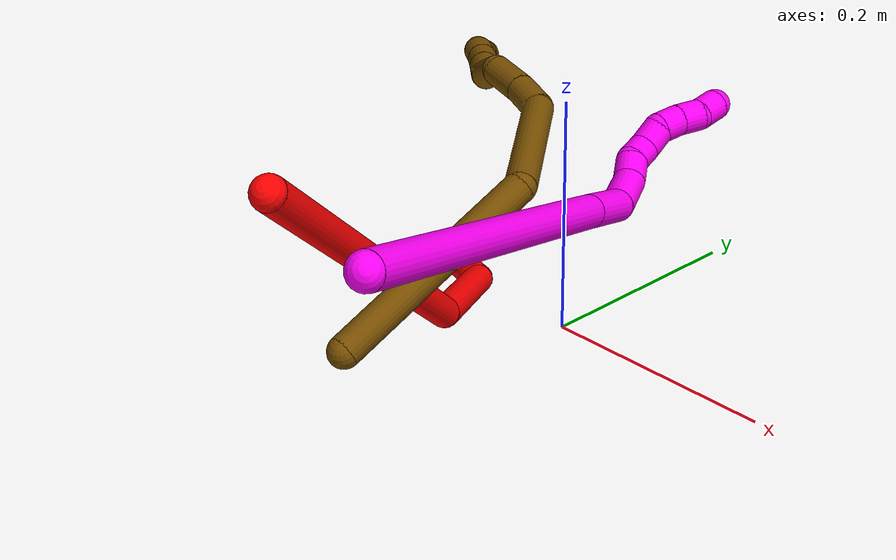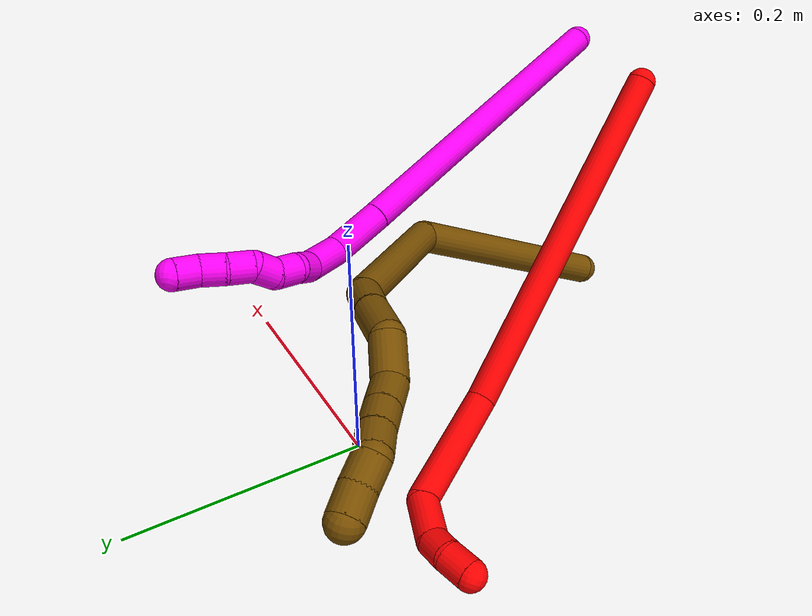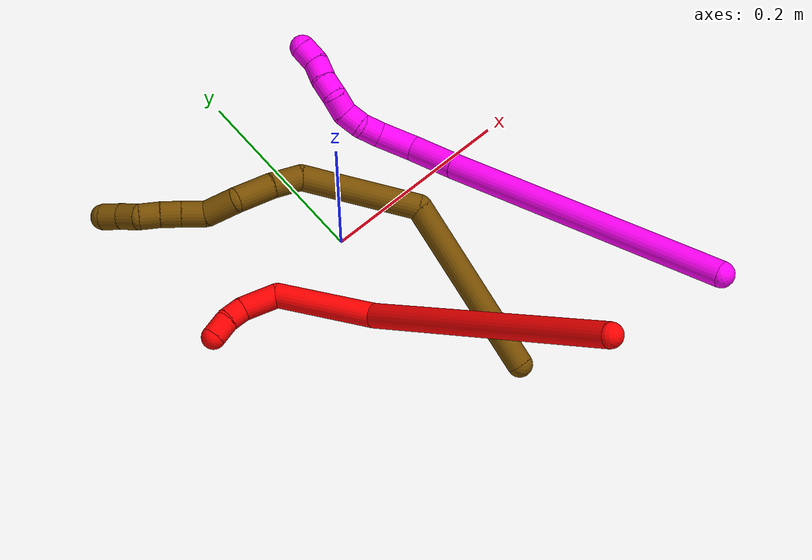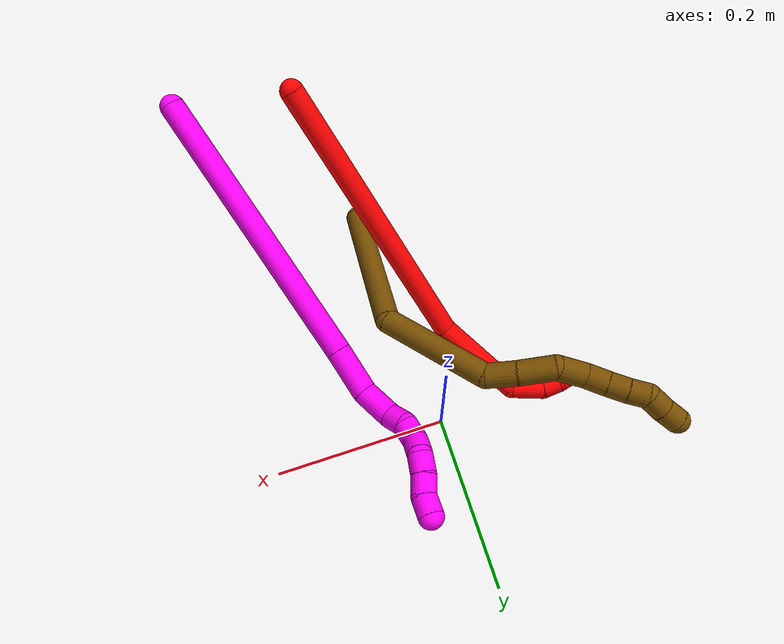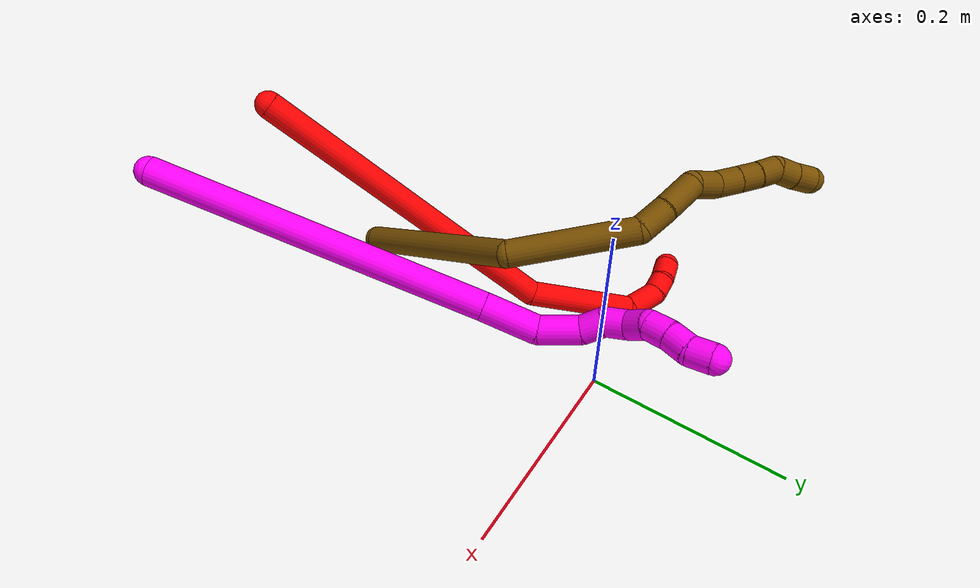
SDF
<sdf version="1.7">
 <world name="default">
  <model name="2">
   <static>0</static>
   <link name="2">
    <collision name="collision-cylinder-e_1_1_4">
     <pose>0.017919 0.005559 -0.15616 -3.10601 0.114174 -2.53795</pose>
     <geometry><cylinder><radius>0.0125</radius><length>0.314567</length></cylinder></geometry>
     <surface>
      <friction><ode><mu>1.16</mu><mu2>1.16</mu2><slip1>0</slip1><slip2>0</slip2></ode></friction>
      <contact><ode><kp>1e+06</kp><kd>1</kd><max_vel>0</max_vel><min_depth>0.001</min_depth></ode></contact>
     </surface>
    </collision>
    <visual name="visual-cylinder-e_1_1_4">
     <pose>0.017919 0.005559 -0.15616 -3.10601 0.114174 -2.53795</pose>
     <geometry><cylinder><radius>0.0125</radius><length>0.314567</length></cylinder></geometry>
     <material><ambient>1 0 0 1</ambient></material>
    </visual>
    <collision name="collision-cylinder-e_2_4_5">
     <pose>0.039377 0.038629 -0.356896 -2.58863 0.067471 -0.236766</pose>
     <geometry><cylinder><radius>0.0125</radius><length>0.105003</length></cylinder></geometry>
     <surface>
      <friction><ode><mu>1.16</mu><mu2>1.16</mu2><slip1>0</slip1><slip2>0</slip2></ode></friction>
      <contact><ode><kp>1e+06</kp><kd>1</kd><max_vel>0</max_vel><min_depth>0.001</min_depth></ode></contact>
     </surface>
    </collision>
    <visual name="visual-cylinder-e_2_4_5">
     <pose>0.039377 0.038629 -0.356896 -2.58863 0.067471 -0.236766</pose>
     <geometry><cylinder><radius>0.0125</radius><length>0.105003</length></cylinder></geometry>
     <material><ambient>1 0 0 1</ambient></material>
    </visual>
    <collision name="collision-cylinder-e_3_5_6">
     <pose>0.032251 0.076686 -0.412852 -2.39425 -0.602243 1.33978</pose>
     <geometry><cylinder><radius>0.0125</radius><length>0.037655</length></cylinder></geometry>
     <surface>
      <friction><ode><mu>1.16</mu><mu2>1.16</mu2><slip1>0</slip1><slip2>0</slip2></ode></friction>
      <contact><ode><kp>1e+06</kp><kd>1</kd><max_vel>0</max_vel><min_depth>0.001</min_depth></ode></contact>
     </surface>
    </collision>
    <visual name="visual-cylinder-e_3_5_6">
     <pose>0.032251 0.076686 -0.412852 -2.39425 -0.602243 1.33978</pose>
     <geometry><cylinder><radius>0.0125</radius><length>0.037655</length></cylinder></geometry>
     <material><ambient>1 0 0 1</ambient></material>
    </visual>
    <collision name="collision-cylinder-e_4_6_7">
     <pose>0.013601 0.093097 -0.42639 -1.92326 -0.906701 1.21918</pose>
     <geometry><cylinder><radius>0.0125</radius><length>0.02028</length></cylinder></geometry>
     <surface>
      <friction><ode><mu>1.16</mu><mu2>1.16</mu2><slip1>0</slip1><slip2>0</slip2></ode></friction>
      <contact><ode><kp>1e+06</kp><kd>1</kd><max_vel>0</max_vel><min_depth>0.001</min_depth></ode></contact>
     </surface>
    </collision>
    <visual name="visual-cylinder-e_4_6_7">
     <pose>0.013601 0.093097 -0.42639 -1.92326 -0.906701 1.21918</pose>
     <geometry><cylinder><radius>0.0125</radius><length>0.02028</length></cylinder></geometry>
     <material><ambient>1 0 0 1</ambient></material>
    </visual>
    <collision name="collision-cylinder-e_5_7_2">
     <pose>-0.004696 0.10268 -0.43107 -2.1669 -1.15988 1.78114</pose>
     <geometry><cylinder><radius>0.0125</radius><length>0.022496</length></cylinder></geometry>
     <surface>
      <friction><ode><mu>1.16</mu><mu2>1.16</mu2><slip1>0</slip1><slip2>0</slip2></ode></friction>
      <contact><ode><kp>1e+06</kp><kd>1</kd><max_vel>0</max_vel><min_depth>0.001</min_depth></ode></contact>
     </surface>
    </collision>
    <visual name="visual-cylinder-e_5_7_2">
     <pose>-0.004696 0.10268 -0.43107 -2.1669 -1.15988 1.78114</pose>
     <geometry><cylinder><radius>0.0125</radius><length>0.022496</length></cylinder></geometry>
     <material><ambient>1 0 0 1</ambient></material>
    </visual>
    <collision name="collision-sphere-2">
     <pose>-0.015007 0.106398 -0.433593 0 -0 0</pose>
     <geometry><sphere><radius>0.0125</radius></sphere></geometry>
     <surface>
      <friction><ode><mu>1.16</mu><mu2>1.16</mu2><slip1>0</slip1><slip2>0</slip2></ode></friction>
      <contact><ode><kp>1e+06</kp><kd>1</kd><max_vel>0</max_vel><min_depth>0.001</min_depth></ode></contact>
     </surface>
    </collision>
    <visual name="visual-sphere-2">
     <pose>-0.015007 0.106398 -0.433593 0 -0 0</pose>
     <geometry><sphere><radius>0.0125</radius></sphere></geometry>
     <material><ambient>1 0 0 1</ambient></material>
    </visual>
    <collision name="collision-sphere-7">
     <pose>0.005616 0.098962 -0.428548 0 -0 0</pose>
     <geometry><sphere><radius>0.0125</radius></sphere></geometry>
     <surface>
      <friction><ode><mu>1.16</mu><mu2>1.16</mu2><slip1>0</slip1><slip2>0</slip2></ode></friction>
      <contact><ode><kp>1e+06</kp><kd>1</kd><max_vel>0</max_vel><min_depth>0.001</min_depth></ode></contact>
     </surface>
    </collision>
    <visual name="visual-sphere-7">
     <pose>0.005616 0.098962 -0.428548 0 -0 0</pose>
     <geometry><sphere><radius>0.0125</radius></sphere></geometry>
     <material><ambient>1 0 0 1</ambient></material>
    </visual>
    <collision name="collision-sphere-6">
     <pose>0.021586 0.087231 -0.424233 0 -0 0</pose>
     <geometry><sphere><radius>0.0125</radius></sphere></geometry>
     <surface>
      <friction><ode><mu>1.16</mu><mu2>1.16</mu2><slip1>0</slip1><slip2>0</slip2></ode></friction>
      <contact><ode><kp>1e+06</kp><kd>1</kd><max_vel>0</max_vel><min_depth>0.001</min_depth></ode></contact>
     </surface>
    </collision>
    <visual name="visual-sphere-6">
     <pose>0.021586 0.087231 -0.424233 0 -0 0</pose>
     <geometry><sphere><radius>0.0125</radius></sphere></geometry>
     <material><ambient>1 0 0 1</ambient></material>
    </visual>
    <collision name="collision-sphere-5">
     <pose>0.042917 0.06614 -0.401472 0 -0 0</pose>
     <geometry><sphere><radius>0.0125</radius></sphere></geometry>
     <surface>
      <friction><ode><mu>1.16</mu><mu2>1.16</mu2><slip1>0</slip1><slip2>0</slip2></ode></friction>
      <contact><ode><kp>1e+06</kp><kd>1</kd><max_vel>0</max_vel><min_depth>0.001</min_depth></ode></contact>
     </surface>
    </collision>
    <visual name="visual-sphere-5">
     <pose>0.042917 0.06614 -0.401472 0 -0 0</pose>
     <geometry><sphere><radius>0.0125</radius></sphere></geometry>
     <material><ambient>1 0 0 1</ambient></material>
    </visual>
    <collision name="collision-sphere-1">
     <geometry><sphere><radius>0.0125</radius></sphere></geometry>
     <surface>
      <friction><ode><mu>1.16</mu><mu2>1.16</mu2><slip1>0</slip1><slip2>0</slip2></ode></friction>
      <contact><ode><kp>1e+06</kp><kd>1</kd><max_vel>0</max_vel><min_depth>0.001</min_depth></ode></contact>
     </surface>
    </collision>
    <visual name="visual-sphere-1">
     <geometry><sphere><radius>0.0125</radius></sphere></geometry>
     <material><ambient>1 0 0 1</ambient></material>
    </visual>
    <collision name="collision-sphere-4">
     <pose>0.035837 0.011118 -0.312321 0 -0 0</pose>
     <geometry><sphere><radius>0.0125</radius></sphere></geometry>
     <surface>
      <friction><ode><mu>1.16</mu><mu2>1.16</mu2><slip1>0</slip1><slip2>0</slip2></ode></friction>
      <contact><ode><kp>1e+06</kp><kd>1</kd><max_vel>0</max_vel><min_depth>0.001</min_depth></ode></contact>
     </surface>
    </collision>
    <visual name="visual-sphere-4">
     <pose>0.035837 0.011118 -0.312321 0 -0 0</pose>
     <geometry><sphere><radius>0.0125</radius></sphere></geometry>
     <material><ambient>1 0 0 1</ambient></material>
    </visual>
    <inertial>
     <pose>0.022312 0.02578 -0.240977 0 -0 0</pose>
     <mass>0.5</mass>
     <inertia>
      <ixx>-0.003521</ixx>
      <ixy>0</ixy>
      <ixz>0</ixz>
      <iyy>0.000593</iyy>
      <iyz>0</iyz>
      <izz>-0.000481</izz>
     </inertia>
    </inertial>
   </link>
   <pose>0.055932 -0.318509 0.240014 0.804431 -0.110827 0.645193</pose>
  </model>
  <model name="10">
   <static>0</static>
   <link name="10">
    <collision name="collision-cylinder-e_1_1_4">
     <pose>-0.013065 0.082809 -0.120584 -2.53982 -0.089077 0.285301</pose>
     <geometry><cylinder><radius>0.0125</radius><length>0.293725</length></cylinder></geometry>
     <surface>
      <friction><ode><mu>1.16</mu><mu2>1.16</mu2><slip1>0</slip1><slip2>0</slip2></ode></friction>
      <contact><ode><kp>1e+06</kp><kd>1</kd><max_vel>0</max_vel><min_depth>0.001</min_depth></ode></contact>
     </surface>
    </collision>
    <visual name="visual-cylinder-e_1_1_4">
     <pose>-0.013065 0.082809 -0.120584 -2.53982 -0.089077 0.285301</pose>
     <geometry><cylinder><radius>0.0125</radius><length>0.293725</length></cylinder></geometry>
     <material><ambient>1 0 0.964706 1</ambient></material>
    </visual>
    <collision name="collision-cylinder-e_2_4_5">
     <pose>-0.027928 0.179979 -0.261024 -2.51545 -0.073272 0.225485</pose>
     <geometry><cylinder><radius>0.0125</radius><length>0.04914</length></cylinder></geometry>
     <surface>
      <friction><ode><mu>1.16</mu><mu2>1.16</mu2><slip1>0</slip1><slip2>0</slip2></ode></friction>
      <contact><ode><kp>1e+06</kp><kd>1</kd><max_vel>0</max_vel><min_depth>0.001</min_depth></ode></contact>
     </surface>
    </collision>
    <visual name="visual-cylinder-e_2_4_5">
     <pose>-0.027928 0.179979 -0.261024 -2.51545 -0.073272 0.225485</pose>
     <geometry><cylinder><radius>0.0125</radius><length>0.04914</length></cylinder></geometry>
     <material><ambient>1 0 0.964706 1</ambient></material>
    </visual>
    <collision name="collision-cylinder-e_3_5_6">
     <pose>-0.038843 0.203193 -0.293965 -2.54673 -0.523344 1.43619</pose>
     <geometry><cylinder><radius>0.0125</radius><length>0.036481</length></cylinder></geometry>
     <surface>
      <friction><ode><mu>1.16</mu><mu2>1.16</mu2><slip1>0</slip1><slip2>0</slip2></ode></friction>
      <contact><ode><kp>1e+06</kp><kd>1</kd><max_vel>0</max_vel><min_depth>0.001</min_depth></ode></contact>
     </surface>
    </collision>
    <visual name="visual-cylinder-e_3_5_6">
     <pose>-0.038843 0.203193 -0.293965 -2.54673 -0.523344 1.43619</pose>
     <geometry><cylinder><radius>0.0125</radius><length>0.036481</length></cylinder></geometry>
     <material><ambient>1 0 0.964706 1</ambient></material>
    </visual>
    <collision name="collision-cylinder-e_4_6_7">
     <pose>-0.056043 0.215923 -0.311963 -2.47355 -0.91201 1.91009</pose>
     <geometry><cylinder><radius>0.0125</radius><length>0.020447</length></cylinder></geometry>
     <surface>
      <friction><ode><mu>1.16</mu><mu2>1.16</mu2><slip1>0</slip1><slip2>0</slip2></ode></friction>
      <contact><ode><kp>1e+06</kp><kd>1</kd><max_vel>0</max_vel><min_depth>0.001</min_depth></ode></contact>
     </surface>
    </collision>
    <visual name="visual-cylinder-e_4_6_7">
     <pose>-0.056043 0.215923 -0.311963 -2.47355 -0.91201 1.91009</pose>
     <geometry><cylinder><radius>0.0125</radius><length>0.020447</length></cylinder></geometry>
     <material><ambient>1 0 0.964706 1</ambient></material>
    </visual>
    <collision name="collision-cylinder-e_5_7_8">
     <pose>-0.06873 0.22675 -0.322477 -2.24915 -0.476014 0.93865</pose>
     <geometry><cylinder><radius>0.0125</radius><length>0.020085</length></cylinder></geometry>
     <surface>
      <friction><ode><mu>1.16</mu><mu2>1.16</mu2><slip1>0</slip1><slip2>0</slip2></ode></friction>
      <contact><ode><kp>1e+06</kp><kd>1</kd><max_vel>0</max_vel><min_depth>0.001</min_depth></ode></contact>
     </surface>
    </collision>
    <visual name="visual-cylinder-e_5_7_8">
     <pose>-0.06873 0.22675 -0.322477 -2.24915 -0.476014 0.93865</pose>
     <geometry><cylinder><radius>0.0125</radius><length>0.020085</length></cylinder></geometry>
     <material><ambient>1 0 0.964706 1</ambient></material>
    </visual>
    <collision name="collision-cylinder-e_6_8_9">
     <pose>-0.079687 0.241358 -0.32908 -1.70088 -0.688486 0.775579</pose>
     <geometry><cylinder><radius>0.0125</radius><length>0.020004</length></cylinder></geometry>
     <surface>
      <friction><ode><mu>1.16</mu><mu2>1.16</mu2><slip1>0</slip1><slip2>0</slip2></ode></friction>
      <contact><ode><kp>1e+06</kp><kd>1</kd><max_vel>0</max_vel><min_depth>0.001</min_depth></ode></contact>
     </surface>
    </collision>
    <visual name="visual-cylinder-e_6_8_9">
     <pose>-0.079687 0.241358 -0.32908 -1.70088 -0.688486 0.775579</pose>
     <geometry><cylinder><radius>0.0125</radius><length>0.020004</length></cylinder></geometry>
     <material><ambient>1 0 0.964706 1</ambient></material>
    </visual>
    <collision name="collision-cylinder-e_7_9_10">
     <pose>-0.08827 0.258072 -0.333752 -1.95579 -0.224225 0.331136</pose>
     <geometry><cylinder><radius>0.0125</radius><length>0.020042</length></cylinder></geometry>
     <surface>
      <friction><ode><mu>1.16</mu><mu2>1.16</mu2><slip1>0</slip1><slip2>0</slip2></ode></friction>
      <contact><ode><kp>1e+06</kp><kd>1</kd><max_vel>0</max_vel><min_depth>0.001</min_depth></ode></contact>
     </surface>
    </collision>
    <visual name="visual-cylinder-e_7_9_10">
     <pose>-0.08827 0.258072 -0.333752 -1.95579 -0.224225 0.331136</pose>
     <geometry><cylinder><radius>0.0125</radius><length>0.020042</length></cylinder></geometry>
     <material><ambient>1 0 0.964706 1</ambient></material>
    </visual>
    <collision name="collision-cylinder-e_8_10_11">
     <pose>-0.091302 0.276767 -0.340043 -1.83636 -0.080296 0.105012</pose>
     <geometry><cylinder><radius>0.0125</radius><length>0.020045</length></cylinder></geometry>
     <surface>
      <friction><ode><mu>1.16</mu><mu2>1.16</mu2><slip1>0</slip1><slip2>0</slip2></ode></friction>
      <contact><ode><kp>1e+06</kp><kd>1</kd><max_vel>0</max_vel><min_depth>0.001</min_depth></ode></contact>
     </surface>
    </collision>
    <visual name="visual-cylinder-e_8_10_11">
     <pose>-0.091302 0.276767 -0.340043 -1.83636 -0.080296 0.105012</pose>
     <geometry><cylinder><radius>0.0125</radius><length>0.020045</length></cylinder></geometry>
     <material><ambient>1 0 0.964706 1</ambient></material>
    </visual>
    <collision name="collision-cylinder-e_9_11_2">
     <pose>-0.095397 0.294676 -0.347257 -2.0777 -0.334797 0.559199</pose>
     <geometry><cylinder><radius>0.0125</radius><length>0.02003</length></cylinder></geometry>
     <surface>
      <friction><ode><mu>1.16</mu><mu2>1.16</mu2><slip1>0</slip1><slip2>0</slip2></ode></friction>
      <contact><ode><kp>1e+06</kp><kd>1</kd><max_vel>0</max_vel><min_depth>0.001</min_depth></ode></contact>
     </surface>
    </collision>
    <visual name="visual-cylinder-e_9_11_2">
     <pose>-0.095397 0.294676 -0.347257 -2.0777 -0.334797 0.559199</pose>
     <geometry><cylinder><radius>0.0125</radius><length>0.02003</length></cylinder></geometry>
     <material><ambient>1 0 0.964706 1</ambient></material>
    </visual>
    <collision name="collision-sphere-2">
     <pose>-0.098687 0.302946 -0.351849 0 -0 0</pose>
     <geometry><sphere><radius>0.0125</radius></sphere></geometry>
     <surface>
      <friction><ode><mu>1.16</mu><mu2>1.16</mu2><slip1>0</slip1><slip2>0</slip2></ode></friction>
      <contact><ode><kp>1e+06</kp><kd>1</kd><max_vel>0</max_vel><min_depth>0.001</min_depth></ode></contact>
     </surface>
    </collision>
    <visual name="visual-sphere-2">
     <pose>-0.098687 0.302946 -0.351849 0 -0 0</pose>
     <geometry><sphere><radius>0.0125</radius></sphere></geometry>
     <material><ambient>1 0 0.964706 1</ambient></material>
    </visual>
    <collision name="collision-sphere-11">
     <pose>-0.092106 0.286407 -0.342665 0 -0 0</pose>
     <geometry><sphere><radius>0.0125</radius></sphere></geometry>
     <surface>
      <friction><ode><mu>1.16</mu><mu2>1.16</mu2><slip1>0</slip1><slip2>0</slip2></ode></friction>
      <contact><ode><kp>1e+06</kp><kd>1</kd><max_vel>0</max_vel><min_depth>0.001</min_depth></ode></contact>
     </surface>
    </collision>
    <visual name="visual-sphere-11">
     <pose>-0.092106 0.286407 -0.342665 0 -0 0</pose>
     <geometry><sphere><radius>0.0125</radius></sphere></geometry>
     <material><ambient>1 0 0.964706 1</ambient></material>
    </visual>
    <collision name="collision-sphere-10">
     <pose>-0.090498 0.267127 -0.337421 0 -0 0</pose>
     <geometry><sphere><radius>0.0125</radius></sphere></geometry>
     <surface>
      <friction><ode><mu>1.16</mu><mu2>1.16</mu2><slip1>0</slip1><slip2>0</slip2></ode></friction>
      <contact><ode><kp>1e+06</kp><kd>1</kd><max_vel>0</max_vel><min_depth>0.001</min_depth></ode></contact>
     </surface>
    </collision>
    <visual name="visual-sphere-10">
     <pose>-0.090498 0.267127 -0.337421 0 -0 0</pose>
     <geometry><sphere><radius>0.0125</radius></sphere></geometry>
     <material><ambient>1 0 0.964706 1</ambient></material>
    </visual>
    <collision name="collision-sphere-9">
     <pose>-0.086042 0.249017 -0.330082 0 -0 0</pose>
     <geometry><sphere><radius>0.0125</radius></sphere></geometry>
     <surface>
      <friction><ode><mu>1.16</mu><mu2>1.16</mu2><slip1>0</slip1><slip2>0</slip2></ode></friction>
      <contact><ode><kp>1e+06</kp><kd>1</kd><max_vel>0</max_vel><min_depth>0.001</min_depth></ode></contact>
     </surface>
    </collision>
    <visual name="visual-sphere-9">
     <pose>-0.086042 0.249017 -0.330082 0 -0 0</pose>
     <geometry><sphere><radius>0.0125</radius></sphere></geometry>
     <material><ambient>1 0 0.964706 1</ambient></material>
    </visual>
    <collision name="collision-sphere-4">
     <pose>-0.02613 0.165619 -0.241169 0 -0 0</pose>
     <geometry><sphere><radius>0.0125</radius></sphere></geometry>
     <surface>
      <friction><ode><mu>1.16</mu><mu2>1.16</mu2><slip1>0</slip1><slip2>0</slip2></ode></friction>
      <contact><ode><kp>1e+06</kp><kd>1</kd><max_vel>0</max_vel><min_depth>0.001</min_depth></ode></contact>
     </surface>
    </collision>
    <visual name="visual-sphere-4">
     <pose>-0.02613 0.165619 -0.241169 0 -0 0</pose>
     <geometry><sphere><radius>0.0125</radius></sphere></geometry>
     <material><ambient>1 0 0.964706 1</ambient></material>
    </visual>
    <collision name="collision-sphere-1">
     <geometry><sphere><radius>0.0125</radius></sphere></geometry>
     <surface>
      <friction><ode><mu>1.16</mu><mu2>1.16</mu2><slip1>0</slip1><slip2>0</slip2></ode></friction>
      <contact><ode><kp>1e+06</kp><kd>1</kd><max_vel>0</max_vel><min_depth>0.001</min_depth></ode></contact>
     </surface>
    </collision>
    <visual name="visual-sphere-1">
     <geometry><sphere><radius>0.0125</radius></sphere></geometry>
     <material><ambient>1 0 0.964706 1</ambient></material>
    </visual>
    <collision name="collision-sphere-8">
     <pose>-0.073332 0.2337 -0.328079 0 -0 0</pose>
     <geometry><sphere><radius>0.0125</radius></sphere></geometry>
     <surface>
      <friction><ode><mu>1.16</mu><mu2>1.16</mu2><slip1>0</slip1><slip2>0</slip2></ode></friction>
      <contact><ode><kp>1e+06</kp><kd>1</kd><max_vel>0</max_vel><min_depth>0.001</min_depth></ode></contact>
     </surface>
    </collision>
    <visual name="visual-sphere-8">
     <pose>-0.073332 0.2337 -0.328079 0 -0 0</pose>
     <geometry><sphere><radius>0.0125</radius></sphere></geometry>
     <material><ambient>1 0 0.964706 1</ambient></material>
    </visual>
    <collision name="collision-sphere-5">
     <pose>-0.029727 0.194339 -0.28088 0 -0 0</pose>
     <geometry><sphere><radius>0.0125</radius></sphere></geometry>
     <surface>
      <friction><ode><mu>1.16</mu><mu2>1.16</mu2><slip1>0</slip1><slip2>0</slip2></ode></friction>
      <contact><ode><kp>1e+06</kp><kd>1</kd><max_vel>0</max_vel><min_depth>0.001</min_depth></ode></contact>
     </surface>
    </collision>
    <visual name="visual-sphere-5">
     <pose>-0.029727 0.194339 -0.28088 0 -0 0</pose>
     <geometry><sphere><radius>0.0125</radius></sphere></geometry>
     <material><ambient>1 0 0.964706 1</ambient></material>
    </visual>
    <collision name="collision-sphere-6">
     <pose>-0.047959 0.212046 -0.30705 0 -0 0</pose>
     <geometry><sphere><radius>0.0125</radius></sphere></geometry>
     <surface>
      <friction><ode><mu>1.16</mu><mu2>1.16</mu2><slip1>0</slip1><slip2>0</slip2></ode></friction>
      <contact><ode><kp>1e+06</kp><kd>1</kd><max_vel>0</max_vel><min_depth>0.001</min_depth></ode></contact>
     </surface>
    </collision>
    <visual name="visual-sphere-6">
     <pose>-0.047959 0.212046 -0.30705 0 -0 0</pose>
     <geometry><sphere><radius>0.0125</radius></sphere></geometry>
     <material><ambient>1 0 0.964706 1</ambient></material>
    </visual>
    <collision name="collision-sphere-7">
     <pose>-0.064128 0.2198 -0.316876 0 -0 0</pose>
     <geometry><sphere><radius>0.0125</radius></sphere></geometry>
     <surface>
      <friction><ode><mu>1.16</mu><mu2>1.16</mu2><slip1>0</slip1><slip2>0</slip2></ode></friction>
      <contact><ode><kp>1e+06</kp><kd>1</kd><max_vel>0</max_vel><min_depth>0.001</min_depth></ode></contact>
     </surface>
    </collision>
    <visual name="visual-sphere-7">
     <pose>-0.064128 0.2198 -0.316876 0 -0 0</pose>
     <geometry><sphere><radius>0.0125</radius></sphere></geometry>
     <material><ambient>1 0 0.964706 1</ambient></material>
    </visual>
    <inertial>
     <pose>-0.032515 0.142 -0.197738 0 -0 0</pose>
     <mass>0.5</mass>
     <inertia>
      <ixx>0.002646</ixx>
      <ixy>0</ixy>
      <ixz>0</ixz>
      <iyy>-0.001027</iyy>
      <iyz>0</iyz>
      <izz>-0.001045</izz>
     </inertia>
    </inertial>
   </link>
   <pose>0.173599 -0.33922 0.238421 0.265809 1.00287 -0.35962</pose>
  </model>
  <model name="12">
   <static>0</static>
   <link name="12">
    <collision name="collision-cylinder-e_1_1_4">
     <pose>-0.008083 0.089059 0.009385 -1.46581 -0.090012 0.081036</pose>
     <geometry><cylinder><radius>0.0125</radius><length>0.179832</length></cylinder></geometry>
     <surface>
      <friction><ode><mu>1.16</mu><mu2>1.16</mu2><slip1>0</slip1><slip2>0</slip2></ode></friction>
      <contact><ode><kp>1e+06</kp><kd>1</kd><max_vel>0</max_vel><min_depth>0.001</min_depth></ode></contact>
     </surface>
    </collision>
    <visual name="visual-cylinder-e_1_1_4">
     <pose>-0.008083 0.089059 0.009385 -1.46581 -0.090012 0.081036</pose>
     <geometry><cylinder><radius>0.0125</radius><length>0.179832</length></cylinder></geometry>
     <material><ambient>0.466667 0.301961 0 1</ambient></material>
    </visual>
    <collision name="collision-cylinder-e_2_4_5">
     <pose>-0.056455 0.218382 0.007532 -1.84297 -0.766968 0.977034</pose>
     <geometry><cylinder><radius>0.0125</radius><length>0.116116</length></cylinder></geometry>
     <surface>
      <friction><ode><mu>1.16</mu><mu2>1.16</mu2><slip1>0</slip1><slip2>0</slip2></ode></friction>
      <contact><ode><kp>1e+06</kp><kd>1</kd><max_vel>0</max_vel><min_depth>0.001</min_depth></ode></contact>
     </surface>
    </collision>
    <visual name="visual-cylinder-e_2_4_5">
     <pose>-0.056455 0.218382 0.007532 -1.84297 -0.766968 0.977034</pose>
     <geometry><cylinder><radius>0.0125</radius><length>0.116116</length></cylinder></geometry>
     <material><ambient>0.466667 0.301961 0 1</ambient></material>
    </visual>
    <collision name="collision-cylinder-e_3_5_6">
     <pose>-0.11174 0.261786 -0.003948 -1.64751 -1.36378 1.43945</pose>
     <geometry><cylinder><radius>0.0125</radius><length>0.030646</length></cylinder></geometry>
     <surface>
      <friction><ode><mu>1.16</mu><mu2>1.16</mu2><slip1>0</slip1><slip2>0</slip2></ode></friction>
      <contact><ode><kp>1e+06</kp><kd>1</kd><max_vel>0</max_vel><min_depth>0.001</min_depth></ode></contact>
     </surface>
    </collision>
    <visual name="visual-cylinder-e_3_5_6">
     <pose>-0.11174 0.261786 -0.003948 -1.64751 -1.36378 1.43945</pose>
     <geometry><cylinder><radius>0.0125</radius><length>0.030646</length></cylinder></geometry>
     <material><ambient>0.466667 0.301961 0 1</ambient></material>
    </visual>
    <collision name="collision-cylinder-e_4_6_7">
     <pose>-0.145246 0.266875 -0.005233 -2.06266 -1.45192 1.95482</pose>
     <geometry><cylinder><radius>0.0125</radius><length>0.037283</length></cylinder></geometry>
     <surface>
      <friction><ode><mu>1.16</mu><mu2>1.16</mu2><slip1>0</slip1><slip2>0</slip2></ode></friction>
      <contact><ode><kp>1e+06</kp><kd>1</kd><max_vel>0</max_vel><min_depth>0.001</min_depth></ode></contact>
     </surface>
    </collision>
    <visual name="visual-cylinder-e_4_6_7">
     <pose>-0.145246 0.266875 -0.005233 -2.06266 -1.45192 1.95482</pose>
     <geometry><cylinder><radius>0.0125</radius><length>0.037283</length></cylinder></geometry>
     <material><ambient>0.466667 0.301961 0 1</ambient></material>
    </visual>
    <collision name="collision-cylinder-e_5_7_8">
     <pose>-0.176263 0.270634 -0.016449 -2.96547 -0.880375 2.771</pose>
     <geometry><cylinder><radius>0.0125</radius><length>0.032445</length></cylinder></geometry>
     <surface>
      <friction><ode><mu>1.16</mu><mu2>1.16</mu2><slip1>0</slip1><slip2>0</slip2></ode></friction>
      <contact><ode><kp>1e+06</kp><kd>1</kd><max_vel>0</max_vel><min_depth>0.001</min_depth></ode></contact>
     </surface>
    </collision>
    <visual name="visual-cylinder-e_5_7_8">
     <pose>-0.176263 0.270634 -0.016449 -2.96547 -0.880375 2.771</pose>
     <geometry><cylinder><radius>0.0125</radius><length>0.032445</length></cylinder></geometry>
     <material><ambient>0.466667 0.301961 0 1</ambient></material>
    </visual>
    <collision name="collision-cylinder-e_6_8_9">
     <pose>-0.198292 0.278231 -0.030316 -2.13905 -0.946078 1.50258</pose>
     <geometry><cylinder><radius>0.0125</radius><length>0.023477</length></cylinder></geometry>
     <surface>
      <friction><ode><mu>1.16</mu><mu2>1.16</mu2><slip1>0</slip1><slip2>0</slip2></ode></friction>
      <contact><ode><kp>1e+06</kp><kd>1</kd><max_vel>0</max_vel><min_depth>0.001</min_depth></ode></contact>
     </surface>
    </collision>
    <visual name="visual-cylinder-e_6_8_9">
     <pose>-0.198292 0.278231 -0.030316 -2.13905 -0.946078 1.50258</pose>
     <geometry><cylinder><radius>0.0125</radius><length>0.023477</length></cylinder></geometry>
     <material><ambient>0.466667 0.301961 0 1</ambient></material>
    </visual>
    <collision name="collision-cylinder-e_7_9_10">
     <pose>-0.216102 0.288834 -0.036977 -2.12287 -0.971903 1.51501</pose>
     <geometry><cylinder><radius>0.0125</radius><length>0.02007</length></cylinder></geometry>
     <surface>
      <friction><ode><mu>1.16</mu><mu2>1.16</mu2><slip1>0</slip1><slip2>0</slip2></ode></friction>
      <contact><ode><kp>1e+06</kp><kd>1</kd><max_vel>0</max_vel><min_depth>0.001</min_depth></ode></contact>
     </surface>
    </collision>
    <visual name="visual-cylinder-e_7_9_10">
     <pose>-0.216102 0.288834 -0.036977 -2.12287 -0.971903 1.51501</pose>
     <geometry><cylinder><radius>0.0125</radius><length>0.02007</length></cylinder></geometry>
     <material><ambient>0.466667 0.301961 0 1</ambient></material>
    </visual>
    <collision name="collision-cylinder-e_8_10_11">
     <pose>-0.233125 0.297727 -0.0428 -2.18181 -1.05285 1.6808</pose>
     <geometry><cylinder><radius>0.0125</radius><length>0.020107</length></cylinder></geometry>
     <surface>
      <friction><ode><mu>1.16</mu><mu2>1.16</mu2><slip1>0</slip1><slip2>0</slip2></ode></friction>
      <contact><ode><kp>1e+06</kp><kd>1</kd><max_vel>0</max_vel><min_depth>0.001</min_depth></ode></contact>
     </surface>
    </collision>
    <visual name="visual-cylinder-e_8_10_11">
     <pose>-0.233125 0.297727 -0.0428 -2.18181 -1.05285 1.6808</pose>
     <geometry><cylinder><radius>0.0125</radius><length>0.020107</length></cylinder></geometry>
     <material><ambient>0.466667 0.301961 0 1</ambient></material>
    </visual>
    <collision name="collision-cylinder-e_9_11_12">
     <pose>-0.246963 0.306665 -0.052759 -2.54152 -0.535143 1.4502</pose>
     <geometry><cylinder><radius>0.0125</radius><length>0.020013</length></cylinder></geometry>
     <surface>
      <friction><ode><mu>1.16</mu><mu2>1.16</mu2><slip1>0</slip1><slip2>0</slip2></ode></friction>
      <contact><ode><kp>1e+06</kp><kd>1</kd><max_vel>0</max_vel><min_depth>0.001</min_depth></ode></contact>
     </surface>
    </collision>
    <visual name="visual-cylinder-e_9_11_12">
     <pose>-0.246963 0.306665 -0.052759 -2.54152 -0.535143 1.4502</pose>
     <geometry><cylinder><radius>0.0125</radius><length>0.020013</length></cylinder></geometry>
     <material><ambient>0.466667 0.301961 0 1</ambient></material>
    </visual>
    <collision name="collision-cylinder-e_10_12_2">
     <pose>-0.258012 0.316191 -0.06642 -2.52323 -0.636356 1.60145</pose>
     <geometry><cylinder><radius>0.0125</radius><length>0.020011</length></cylinder></geometry>
     <surface>
      <friction><ode><mu>1.16</mu><mu2>1.16</mu2><slip1>0</slip1><slip2>0</slip2></ode></friction>
      <contact><ode><kp>1e+06</kp><kd>1</kd><max_vel>0</max_vel><min_depth>0.001</min_depth></ode></contact>
     </surface>
    </collision>
    <visual name="visual-cylinder-e_10_12_2">
     <pose>-0.258012 0.316191 -0.06642 -2.52323 -0.636356 1.60145</pose>
     <geometry><cylinder><radius>0.0125</radius><length>0.020011</length></cylinder></geometry>
     <material><ambient>0.466667 0.301961 0 1</ambient></material>
    </visual>
    <collision name="collision-sphere-2">
     <pose>-0.263958 0.320855 -0.072976 0 -0 0</pose>
     <geometry><sphere><radius>0.0125</radius></sphere></geometry>
     <surface>
      <friction><ode><mu>1.16</mu><mu2>1.16</mu2><slip1>0</slip1><slip2>0</slip2></ode></friction>
      <contact><ode><kp>1e+06</kp><kd>1</kd><max_vel>0</max_vel><min_depth>0.001</min_depth></ode></contact>
     </surface>
    </collision>
    <visual name="visual-sphere-2">
     <pose>-0.263958 0.320855 -0.072976 0 -0 0</pose>
     <geometry><sphere><radius>0.0125</radius></sphere></geometry>
     <material><ambient>0.466667 0.301961 0 1</ambient></material>
    </visual>
    <collision name="collision-sphere-12">
     <pose>-0.252066 0.311526 -0.059863 0 -0 0</pose>
     <geometry><sphere><radius>0.0125</radius></sphere></geometry>
     <surface>
      <friction><ode><mu>1.16</mu><mu2>1.16</mu2><slip1>0</slip1><slip2>0</slip2></ode></friction>
      <contact><ode><kp>1e+06</kp><kd>1</kd><max_vel>0</max_vel><min_depth>0.001</min_depth></ode></contact>
     </surface>
    </collision>
    <visual name="visual-sphere-12">
     <pose>-0.252066 0.311526 -0.059863 0 -0 0</pose>
     <geometry><sphere><radius>0.0125</radius></sphere></geometry>
     <material><ambient>0.466667 0.301961 0 1</ambient></material>
    </visual>
    <collision name="collision-sphere-11">
     <pose>-0.24186 0.301804 -0.045655 0 -0 0</pose>
     <geometry><sphere><radius>0.0125</radius></sphere></geometry>
     <surface>
      <friction><ode><mu>1.16</mu><mu2>1.16</mu2><slip1>0</slip1><slip2>0</slip2></ode></friction>
      <contact><ode><kp>1e+06</kp><kd>1</kd><max_vel>0</max_vel><min_depth>0.001</min_depth></ode></contact>
     </surface>
    </collision>
    <visual name="visual-sphere-11">
     <pose>-0.24186 0.301804 -0.045655 0 -0 0</pose>
     <geometry><sphere><radius>0.0125</radius></sphere></geometry>
     <material><ambient>0.466667 0.301961 0 1</ambient></material>
    </visual>
    <collision name="collision-sphere-10">
     <pose>-0.22439 0.29365 -0.039944 0 -0 0</pose>
     <geometry><sphere><radius>0.0125</radius></sphere></geometry>
     <surface>
      <friction><ode><mu>1.16</mu><mu2>1.16</mu2><slip1>0</slip1><slip2>0</slip2></ode></friction>
      <contact><ode><kp>1e+06</kp><kd>1</kd><max_vel>0</max_vel><min_depth>0.001</min_depth></ode></contact>
     </surface>
    </collision>
    <visual name="visual-sphere-10">
     <pose>-0.22439 0.29365 -0.039944 0 -0 0</pose>
     <geometry><sphere><radius>0.0125</radius></sphere></geometry>
     <material><ambient>0.466667 0.301961 0 1</ambient></material>
    </visual>
    <collision name="collision-sphere-9">
     <pose>-0.207813 0.284017 -0.03401 0 -0 0</pose>
     <geometry><sphere><radius>0.0125</radius></sphere></geometry>
     <surface>
      <friction><ode><mu>1.16</mu><mu2>1.16</mu2><slip1>0</slip1><slip2>0</slip2></ode></friction>
      <contact><ode><kp>1e+06</kp><kd>1</kd><max_vel>0</max_vel><min_depth>0.001</min_depth></ode></contact>
     </surface>
    </collision>
    <visual name="visual-sphere-9">
     <pose>-0.207813 0.284017 -0.03401 0 -0 0</pose>
     <geometry><sphere><radius>0.0125</radius></sphere></geometry>
     <material><ambient>0.466667 0.301961 0 1</ambient></material>
    </visual>
    <collision name="collision-sphere-4">
     <pose>-0.016165 0.178118 0.018769 0 -0 0</pose>
     <geometry><sphere><radius>0.0125</radius></sphere></geometry>
     <surface>
      <friction><ode><mu>1.16</mu><mu2>1.16</mu2><slip1>0</slip1><slip2>0</slip2></ode></friction>
      <contact><ode><kp>1e+06</kp><kd>1</kd><max_vel>0</max_vel><min_depth>0.001</min_depth></ode></contact>
     </surface>
    </collision>
    <visual name="visual-sphere-4">
     <pose>-0.016165 0.178118 0.018769 0 -0 0</pose>
     <geometry><sphere><radius>0.0125</radius></sphere></geometry>
     <material><ambient>0.466667 0.301961 0 1</ambient></material>
    </visual>
    <collision name="collision-sphere-1">
     <geometry><sphere><radius>0.0125</radius></sphere></geometry>
     <surface>
      <friction><ode><mu>1.16</mu><mu2>1.16</mu2><slip1>0</slip1><slip2>0</slip2></ode></friction>
      <contact><ode><kp>1e+06</kp><kd>1</kd><max_vel>0</max_vel><min_depth>0.001</min_depth></ode></contact>
     </surface>
    </collision>
    <visual name="visual-sphere-1">
     <geometry><sphere><radius>0.0125</radius></sphere></geometry>
     <material><ambient>0.466667 0.301961 0 1</ambient></material>
    </visual>
    <collision name="collision-sphere-8">
     <pose>-0.18877 0.272444 -0.026621 0 -0 0</pose>
     <geometry><sphere><radius>0.0125</radius></sphere></geometry>
     <surface>
      <friction><ode><mu>1.16</mu><mu2>1.16</mu2><slip1>0</slip1><slip2>0</slip2></ode></friction>
      <contact><ode><kp>1e+06</kp><kd>1</kd><max_vel>0</max_vel><min_depth>0.001</min_depth></ode></contact>
     </surface>
    </collision>
    <visual name="visual-sphere-8">
     <pose>-0.18877 0.272444 -0.026621 0 -0 0</pose>
     <geometry><sphere><radius>0.0125</radius></sphere></geometry>
     <material><ambient>0.466667 0.301961 0 1</ambient></material>
    </visual>
    <collision name="collision-sphere-5">
     <pose>-0.096744 0.258646 -0.003706 0 -0 0</pose>
     <geometry><sphere><radius>0.0125</radius></sphere></geometry>
     <surface>
      <friction><ode><mu>1.16</mu><mu2>1.16</mu2><slip1>0</slip1><slip2>0</slip2></ode></friction>
      <contact><ode><kp>1e+06</kp><kd>1</kd><max_vel>0</max_vel><min_depth>0.001</min_depth></ode></contact>
     </surface>
    </collision>
    <visual name="visual-sphere-5">
     <pose>-0.096744 0.258646 -0.003706 0 -0 0</pose>
     <geometry><sphere><radius>0.0125</radius></sphere></geometry>
     <material><ambient>0.466667 0.301961 0 1</ambient></material>
    </visual>
    <collision name="collision-sphere-6">
     <pose>-0.126736 0.264926 -0.004189 0 -0 0</pose>
     <geometry><sphere><radius>0.0125</radius></sphere></geometry>
     <surface>
      <friction><ode><mu>1.16</mu><mu2>1.16</mu2><slip1>0</slip1><slip2>0</slip2></ode></friction>
      <contact><ode><kp>1e+06</kp><kd>1</kd><max_vel>0</max_vel><min_depth>0.001</min_depth></ode></contact>
     </surface>
    </collision>
    <visual name="visual-sphere-6">
     <pose>-0.126736 0.264926 -0.004189 0 -0 0</pose>
     <geometry><sphere><radius>0.0125</radius></sphere></geometry>
     <material><ambient>0.466667 0.301961 0 1</ambient></material>
    </visual>
    <collision name="collision-sphere-7">
     <pose>-0.163756 0.268824 -0.006277 0 -0 0</pose>
     <geometry><sphere><radius>0.0125</radius></sphere></geometry>
     <surface>
      <friction><ode><mu>1.16</mu><mu2>1.16</mu2><slip1>0</slip1><slip2>0</slip2></ode></friction>
      <contact><ode><kp>1e+06</kp><kd>1</kd><max_vel>0</max_vel><min_depth>0.001</min_depth></ode></contact>
     </surface>
    </collision>
    <visual name="visual-sphere-7">
     <pose>-0.163756 0.268824 -0.006277 0 -0 0</pose>
     <geometry><sphere><radius>0.0125</radius></sphere></geometry>
     <material><ambient>0.466667 0.301961 0 1</ambient></material>
    </visual>
    <inertial>
     <pose>-0.092705 0.197813 -0.005974 0 -0 0</pose>
     <mass>0.5</mass>
     <inertia>
      <ixx>0.000647</ixx>
      <ixy>0</ixy>
      <ixz>0</ixz>
      <iyy>0.000279</iyy>
      <iyz>0</iyz>
      <izz>-0.000436</izz>
     </inertia>
    </inertial>
   </link>
   <pose>0.022969 -0.243949 0.085749 0.340769 0.15824 -0.088288</pose>
  </model>
 </world>
</sdf>
